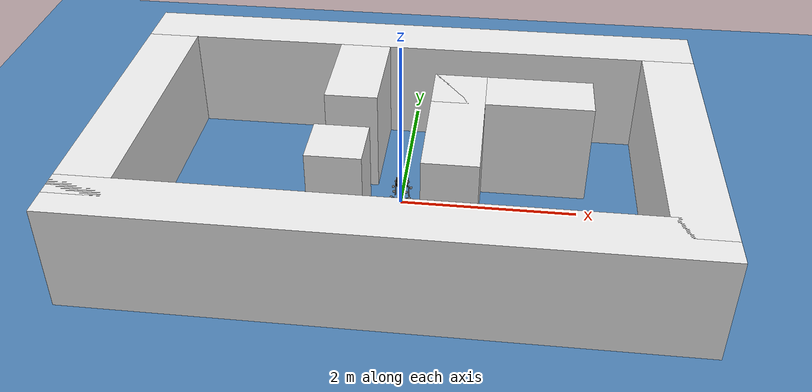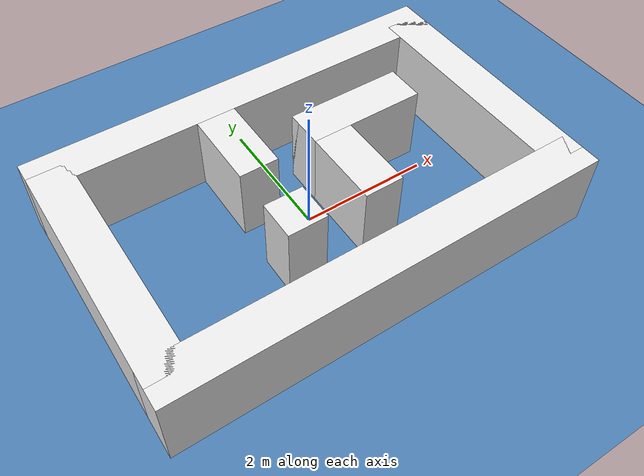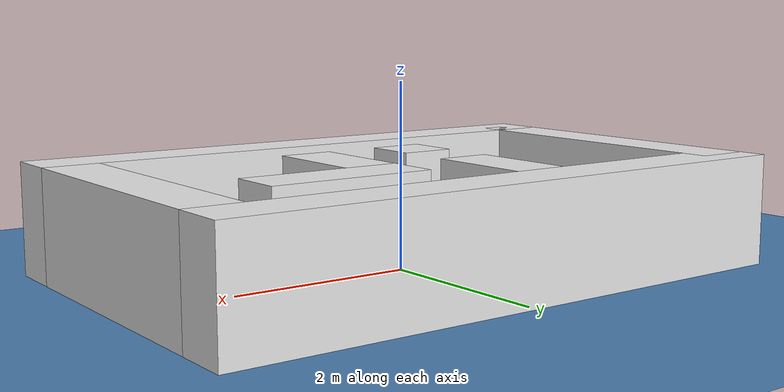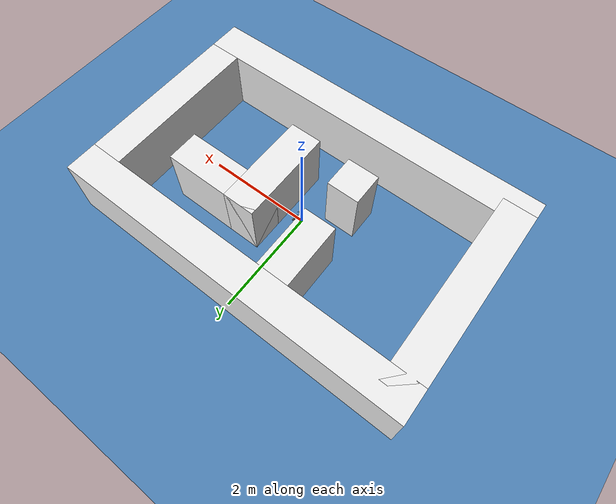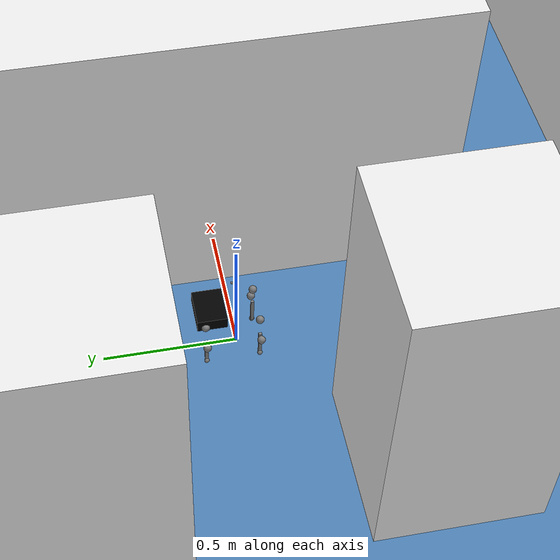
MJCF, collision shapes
<?xml version='1.0' encoding='utf-8'?>
<mujoco model="pupper_v2_dji">
  <compiler angle="radian" meshdir="meshes/" autolimits="true" />
  <asset>
    <mesh name="Cube.003" content_type="model/obj" file="Cube.003.obj" />
    <texture name="grid" type="2d" builtin="checker" width="512" height="512" rgb1=".2 .4 .6" rgb2=".4 .6 .8" />
    <material name="grid" texture="grid" texrepeat="1 1" texuniform="true" reflectance="0" />
  <mesh name="apriltag_quad" file="apriltag_quad.obj" scale="0.4 0.4 1.0" inertia="shell" /><texture name="apriltag_good_tex" type="2d" file="textures/apriltag_36h11_id101.png" /><texture name="apriltag_bad_tex" type="2d" file="textures/apriltag_36h11_id287.png" /><material name="apriltag_good_mat" texture="apriltag_good_tex" texuniform="true" texrepeat="1 1" reflectance="0" shininess="0" specular="0" /><material name="apriltag_bad_mat" texture="apriltag_bad_tex" texuniform="true" texrepeat="1 1" reflectance="0" shininess="0" specular="0" /><material name="room_wall_mat" rgba="0.92 0.92 0.92 1" /></asset>
  <worldbody>
    <body name="base_link" pos="0 0 0.20">
      <inertial pos="0 -0.048 -0.00964" quat="0.499924 0.500153 -0.497855 0.50206" mass="0.991" diaginertia="0.00678008 0.00626009 0.00174983" />
      <geom name="Cube" pos="0 0.1 0" quat="1 0 0 0" type="mesh" mesh="Cube.003" contype="0" conaffinity="0" />
      <body name="leftFrontLeg" pos="0.047 -0.1015 0">
        <inertial pos="0.0139 0.0254 0" quat="0.5 0.5 0.5 0.5" mass="0.106" diaginertia="6e-05 6e-05 2e-05" />
        <joint name="leftFrontLegMotor" pos="0 0 0" axis="0 -1 0" range="-0.7854 0.7854" />
        <geom name="Hip L" size="0.015" pos="0.0235 0.0265 0" quat="0.499998 0.5 -0.500002 -0.5" type="sphere" class="collision" contype="2" conaffinity="1" condim="3" group="1" />
        <body name="leftFrontUpperLeg" pos="0.0395 0.0265 0">
          <inertial pos="0.0172 0 -0.061" quat="0.707107 0 0 0.707107" mass="0.142" diaginertia="0.00016 0.00014 3e-05" />
          <joint name="leftFrontUpperLegMotor" pos="0 0 0" axis="1 0 0" range="-1.309 4.45059" />
          <geom name="Upper Leg - Pupper 2.1 v57" size="0.015" pos="0.0169 0 -0.08" quat="0.499998 0.5 0.500002 0.5" type="sphere" class="collision" contype="2" conaffinity="1" condim="3" group="1" />
          <body name="leftFrontLowerLeg" pos="-0.004 0 -0.08" quat="1.32679e-06 0 0 1">
            <inertial pos="0.0055706 -0.000748031 -0.065916" quat="0.776224 3.90663e-05 3.17301e-05 0.630458" mass="0.0381" diaginertia="0.000200196 0.000200195 4.00013e-05" />
            <joint name="leftFrontLowerLegMotor" pos="0 0 0" axis="-1 0 0" range="-2.87979 2.87979" />
            <geom name="Lower Leg L" size="0.004755 0.006 0.05379" pos="0.00699 0 -0.05223" type="box" contype="0" conaffinity="0" />
            <geom name="Sphere.003" size="0.0095" pos="0.002 0 -0.11" quat="1.32679e-06 0 0 -1" type="sphere" class="collision" contype="1" conaffinity="1" condim="3" group="1" />
            <site name="leftFrontLowerLeg_foot_site" pos="0.002 0 -0.11" />
          </body>
        </body>
      </body>
      <body name="leftRearLeg" pos="0.047 0.0985 0">
        <inertial pos="0.0139 0.0254 0" quat="0.5 0.5 0.5 0.5" mass="0.106" diaginertia="6e-05 6e-05 2e-05" />
        <joint name="leftRearLegMotor" pos="0 0 0" axis="0 -1 0" range="-0.7854 0.7854" />
        <geom size="0.015" pos="0.0235 0.0265 0" quat="0.499998 0.5 -0.500002 -0.5" type="sphere" class="collision" contype="2" conaffinity="1" condim="3" group="1" />
        <body name="leftRearUpperLeg" pos="0.0395 0.0265 0">
          <inertial pos="0.0172 0 -0.061" quat="0.707107 0 0 0.707107" mass="0.142" diaginertia="0.00016 0.00014 3e-05" />
          <joint name="leftRearUpperLegMotor" pos="0 0 0" axis="1 0 0" range="-1.309 4.45059" />
          <geom size="0.015" pos="0.0169 0 -0.08" quat="0.499998 0.5 0.500002 0.5" type="sphere" class="collision" contype="2" conaffinity="1" condim="3" group="1" />
          <body name="leftRearLowerLeg" pos="-0.004 0 -0.08" quat="1.32679e-06 0 0 1">
            <inertial pos="0.0055706 -0.000748031 -0.065916" quat="0.776224 3.90663e-05 3.17301e-05 0.630458" mass="0.0381" diaginertia="0.000200196 0.000200195 4.00013e-05" />
            <joint name="leftRearLowerLegMotor" pos="0 0 0" axis="-1 0 0" range="-2.87979 2.87979" />
            <geom size="0.004755 0.006 0.05379" pos="0.00699 0 -0.05223" type="box" contype="0" conaffinity="0" />
            <geom name="Sphere" size="0.0095" pos="0.002 0 -0.11" quat="1.32679e-06 0 0 -1" type="sphere" class="collision" contype="1" conaffinity="1" condim="3" group="1" />
            <site name="leftRearLowerLeg_foot_site" pos="0.002 0 -0.11" />
          </body>
        </body>
      </body>
      <body name="rightFrontLeg" pos="-0.047 -0.103 0" quat="1.32679e-06 0 0 -1">
        <inertial pos="0.0139 -0.0269 0" quat="0.5 0.5 0.5 0.5" mass="0.106" diaginertia="6e-05 6e-05 2e-05" />
        <joint name="rightFrontLegMotor" pos="0 0 0" axis="0 1 0" range="-0.7854 0.7854" />
        <geom name="Hip R" size="0.015" pos="0.0235 -0.028 0" quat="0.499998 0.5 -0.500002 -0.5" type="sphere" class="collision" contype="2" conaffinity="1" condim="3" group="1" />
        <body name="rightFrontUpperLeg" pos="0.0395 -0.028 0">
          <inertial pos="0.0172 0 -0.061" quat="0.707107 0 0 0.707107" mass="0.142" diaginertia="0.00016 0.00014 3e-05" />
          <joint name="rightFrontUpperLegMotor" pos="0 0 0" axis="-1 0 0" range="-1.309 4.45059" />
          <geom size="0.015" pos="0.0169 0 -0.08" quat="0.499998 0.5 -0.500002 -0.5" type="sphere" class="collision" contype="2" conaffinity="1" condim="3" group="1" />
          <body name="rightFrontLowerLeg" pos="-0.004 0 -0.08">
            <inertial pos="-0.00586982 -0.000748031 -0.065916" quat="0.63648 -3.4609e-05 -4.19395e-05 0.771293" mass="0.0381" diaginertia="0.000200196 0.000200195 4.00016e-05" />
            <joint name="rightFrontLowerLegMotor" pos="0 0 0" axis="-1 0 0" range="-2.87979 2.87979" />
            <geom name="Lower Leg R" size="0.004765 0.006 0.05379" pos="-0.00698 0 -0.05223" type="box" contype="0" conaffinity="0" />
            <geom name="Sphere.002" size="0.0095" pos="-0.002 0 -0.11" quat="1.32679e-06 0 0 1" type="sphere" class="collision" contype="1" conaffinity="1" condim="3" group="1" />
            <site name="rightFrontLowerLeg_foot_site" pos="-0.002 0 -0.11" />
          </body>
        </body>
      </body>
      <body name="rightRearLeg" pos="-0.047 0.097 0" quat="1.32679e-06 0 0 -1">
        <inertial pos="0.0139 -0.0269 0" quat="0.5 0.5 0.5 0.5" mass="0.106" diaginertia="6e-05 6e-05 2e-05" />
        <joint name="rightRearLegMotor" pos="0 0 0" axis="0 1 0" range="-0.7854 0.7854" />
        <geom size="0.015" pos="0.0235 -0.028 0" quat="0.499998 0.5 -0.500002 -0.5" type="sphere" class="collision" contype="2" conaffinity="1" condim="3" group="1" />
        <body name="rightRearUpperLeg" pos="0.0395 -0.028 0">
          <inertial pos="0.0172 0 -0.061" quat="0.707107 0 0 0.707107" mass="0.142" diaginertia="0.00016 0.00014 3e-05" />
          <joint name="rightRearUpperLegMotor" pos="0 0 0" axis="-1 0 0" range="-1.309 4.45059" />
          <geom size="0.015" pos="0.0169 0 -0.08" quat="0.499998 0.5 -0.500002 -0.5" type="sphere" class="collision" contype="2" conaffinity="1" condim="3" group="1" />
          <body name="rightRearLowerLeg" pos="-0.004 0 -0.08">
            <inertial pos="-0.00586982 -0.000748031 -0.065916" quat="0.63648 -3.4609e-05 -4.19395e-05 0.771293" mass="0.0381" diaginertia="0.000200196 0.000200195 4.00016e-05" />
            <joint name="rightRearLowerLegMotor" pos="0 0 0" axis="-1 0 0" range="-2.87979 2.87979" />
            <geom size="0.004765 0.006 0.05379" pos="-0.00698 0 -0.05223" type="box" contype="0" conaffinity="0" />
            <geom name="Sphere.001" size="0.0095" pos="-0.002 0 -0.11" quat="1.32679e-06 0 0 1" type="sphere" class="collision" contype="1" conaffinity="1" condim="3" group="1" />
            <site name="rightRearLowerLeg_foot_site" pos="-0.002 0 -0.11" />
          </body>
        </body>
      </body>
      <freejoint name="base_link_freejoint" />
      <site name="body_imu_site" pos="0.09 0 0.032" />
      <geom name="base_collision" type="box" size="0.070 0.055 0.025" pos="0 0.100 0.010" class="collision" contype="1" conaffinity="1" condim="3" group="3" rgba="0 0 0 0" />
    <camera name="front_cam" pos="0.0001 -0.147 -0.0064" xyaxes="-1 0 0 0 0 1" fovy="48.8" /></body>
    <geom name="floor" size="0 0 .05" type="plane" material="grid" condim="3" contype="1" conaffinity="1" />
    <geom name="floor_visual" size="0 0 .05" pos="0 0 -0.001" type="plane" material="grid" condim="3" contype="0" conaffinity="0" group="1" />
    <light name="spotlight" mode="targetbodycom" target="base_link" diffuse="1.0 1.0 1.0" specular="0.35 0.35 0.35" ambient="0.20 0.20 0.20" pos="0 -4 4" cutoff="100" castshadow="false" />
    <light name="back_fill" mode="targetbodycom" target="base_link" diffuse="0.55 0.55 0.55" specular="0.12 0.12 0.12" ambient="0.10 0.10 0.10" pos="0 3.5 2.5" cutoff="100" castshadow="false" />
    <camera name="tracking_cam" mode="targetbody" target="base_link" pos="0.5 -0.5 0.5" />
  <geom name="room_wall_front" type="box" pos="0 -1.8 0.6" size="3.3 0.3 0.6" material="room_wall_mat" contype="1" conaffinity="1" condim="3" friction="0.4 0.005 0.0001" /><geom name="room_wall_back" type="box" pos="0 1.8 0.6" size="3.3 0.3 0.6" material="room_wall_mat" contype="1" conaffinity="1" condim="3" friction="0.4 0.005 0.0001" /><geom name="room_wall_left" type="box" pos="-3.0 0 0.6" size="0.3 1.8 0.6" material="room_wall_mat" contype="1" conaffinity="1" condim="3" friction="0.4 0.005 0.0001" /><geom name="room_wall_right" type="box" pos="3.0 0 0.6" size="0.3 1.8 0.6" material="room_wall_mat" contype="1" conaffinity="1" condim="3" friction="0.4 0.005 0.0001" /><geom name="room_wall_l4_v1a" type="box" pos="-0.6 0.9 0.6" size="0.3 0.6 0.6" material="room_wall_mat" contype="1" conaffinity="1" condim="3" friction="0.4 0.005 0.0001" /><geom name="room_wall_l4_v1b" type="box" pos="-0.6 -0.6 0.6" size="0.3 0.3 0.6" material="room_wall_mat" contype="1" conaffinity="1" condim="3" friction="0.4 0.005 0.0001" /><geom name="room_wall_l4_h1" type="box" pos="1.2 0.6 0.6" size="0.9 0.3 0.6" material="room_wall_mat" contype="1" conaffinity="1" condim="3" friction="0.4 0.005 0.0001" /><geom name="room_wall_l4_v2" type="box" pos="0.6 0.0 0.6" size="0.3 0.9 0.6" material="room_wall_mat" contype="1" conaffinity="1" condim="3" friction="0.4 0.005 0.0001" /><geom name="apriltag_good_panel" type="mesh" mesh="apriltag_quad" pos="0.0 -1.46 0.25" quat="0.70710678 -0.70710678 0 0" material="apriltag_good_mat" contype="0" conaffinity="0" group="1" /></worldbody>
  <default>
    <geom condim="3" contype="0" conaffinity="0" group="1" />
    <joint armature="0.0016" type="hinge" damping="0.01" frictionloss="0.125" limited="true" />
    <general forcerange="-3 3" forcelimited="true" biastype="affine" gainprm="5.0 0 0" biasprm="0 -5.0 -0.1" />
    <default class="collision">
      <geom group="3" contype="1" conaffinity="1" condim="3" solimp="0.015 1 0.031" friction="0.8 0.02 0.01" />
    </default>
  </default>
  <actuator>
    <general joint="rightFrontLegMotor" name="rightFrontLegMotor" />
    <general joint="rightFrontUpperLegMotor" name="rightFrontUpperLegMotor" />
    <general joint="rightFrontLowerLegMotor" name="rightFrontLowerLegMotor" />
    <general joint="leftFrontLegMotor" name="leftFrontLegMotor" />
    <general joint="leftFrontUpperLegMotor" name="leftFrontUpperLegMotor" />
    <general joint="leftFrontLowerLegMotor" name="leftFrontLowerLegMotor" />
    <general joint="rightRearLegMotor" name="rightRearLegMotor" />
    <general joint="rightRearUpperLegMotor" name="rightRearUpperLegMotor" />
    <general joint="rightRearLowerLegMotor" name="rightRearLowerLegMotor" />
    <general joint="leftRearLegMotor" name="leftRearLegMotor" />
    <general joint="leftRearUpperLegMotor" name="leftRearUpperLegMotor" />
    <general joint="leftRearLowerLegMotor" name="leftRearLowerLegMotor" />
  </actuator>
  <option cone="pyramidal" impratio="10" iterations="2" ls_iterations="5" timestep="0.004">
    <flag eulerdamp="disable" />
  </option>
  <custom>
    <numeric name="max_contact_points" data="5" />
    <numeric name="max_geom_pairs" data="4" />
  </custom>
</mujoco>
